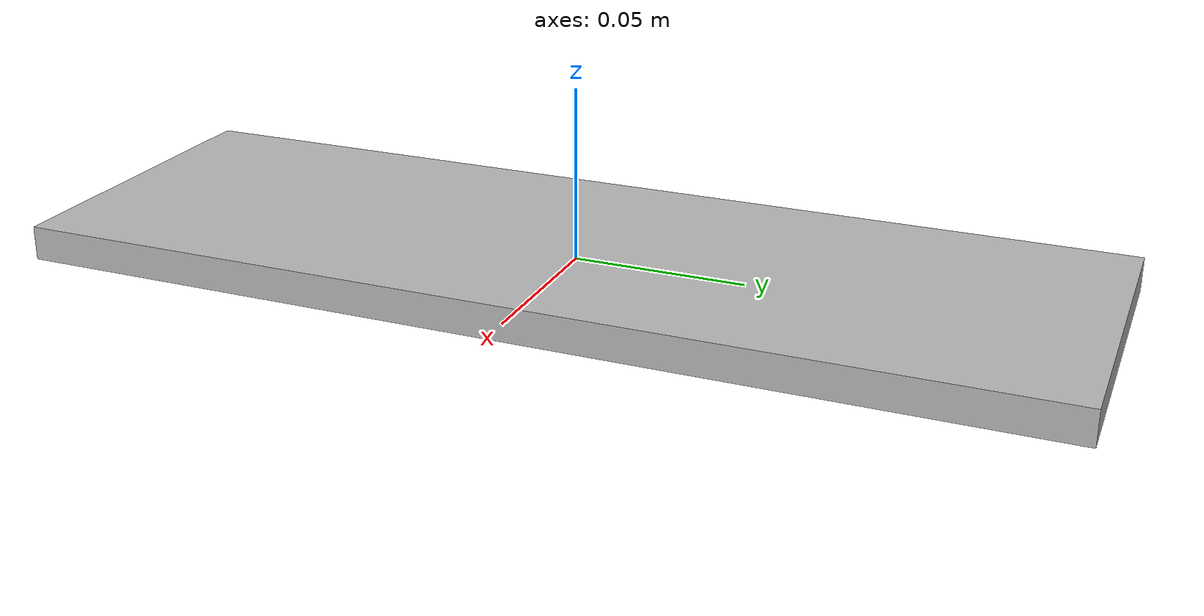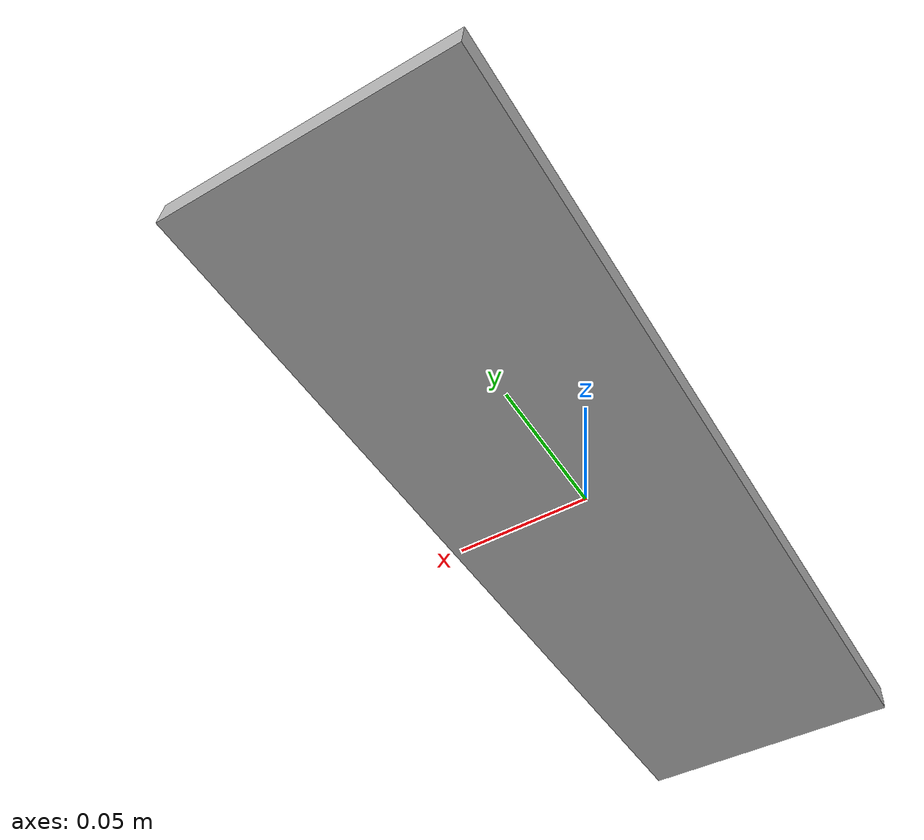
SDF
<?xml version='1.0'?>
<sdf version='1.6'>
  <model name="line_remove">
      <static>true</static>
      <link name='link'>
        <collision name='collision'>
          <geometry>
         <box>
            <size>0.1 0.3 0.01</size>
          </box>
          </geometry>
          <surface>
            <friction>
              <ode>
                <mu>100</mu>
                <mu2>50</mu2>
              </ode>
            </friction>
          </surface>
        </collision>
        <visual name='visual'>
          <cast_shadows>0</cast_shadows>
          <geometry>
         <box>
            <size>0.1 0.3 0.01</size>
          </box>
          </geometry>
          <material>
            <script>
              <uri>model://line_remove/materials/scripts</uri>
              <uri>model://line_remove/materials/textures/</uri>
              <name>line_remove/Image</name>
            </script>
          </material>
        </visual>
      </link>
  </model>
</sdf>
